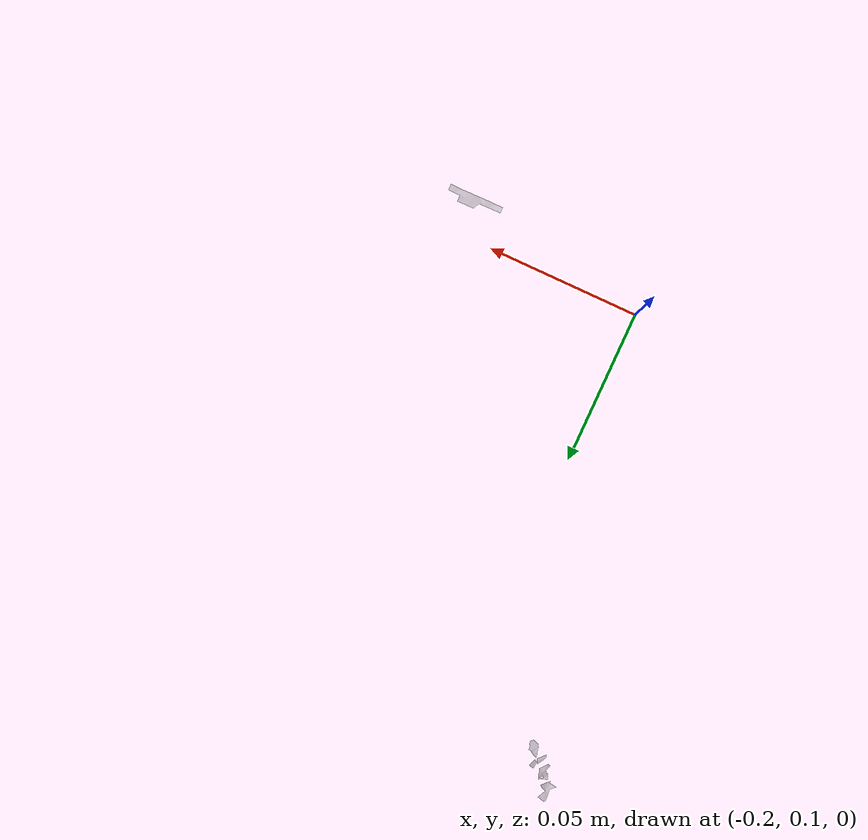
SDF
<?xml version='1.0'?>
<sdf version="1.4">
  <model name="023_wine_glass">
    <static>false</static>
    <link name="link">
      <inertial>
        <pose>-0.18652878599953 0.16650929075335338 0.05110064046905654 2.033386829574061 -0.024776589272834614 0.5348382447429206</pose>
        <mass>0.002978223385575014</mass>
        <inertia>
          <ixx>6.167607861359133e-06</ixx>
          <ixy>1.4430257909664988e-22</ixy>
          <ixz>1.9398776163404666e-22</ixz>
          <iyy>6.0533334353274676e-06</iyy>
          <iyz>-1.3052293103591762e-21</iyz>
          <izz>1.612892280504661e-07</izz>
        </inertia>
      </inertial>
      <collision name="collision">
        <geometry>
          <mesh>
            <!-- Use a downsampled mesh for collisions -->
            <uri>model:///023_wine_glass/023_wine_glass_250_collision.stl</uri>
	        </mesh>
        </geometry>
        <surface>
      </surface>
      </collision>
      <visual name="visual">
        <geometry>
          <mesh>
            <uri>model:///023_wine_glass/textured.obj</uri>
	        </mesh>
        </geometry>
        <material>
          <script>
            <uri>model:///023_wine_glass/023_wine_glass.material</uri>
            <name>023_wine_glass</name>
          </script>
        </material>
      </visual>
    </link>
  </model>
</sdf>
